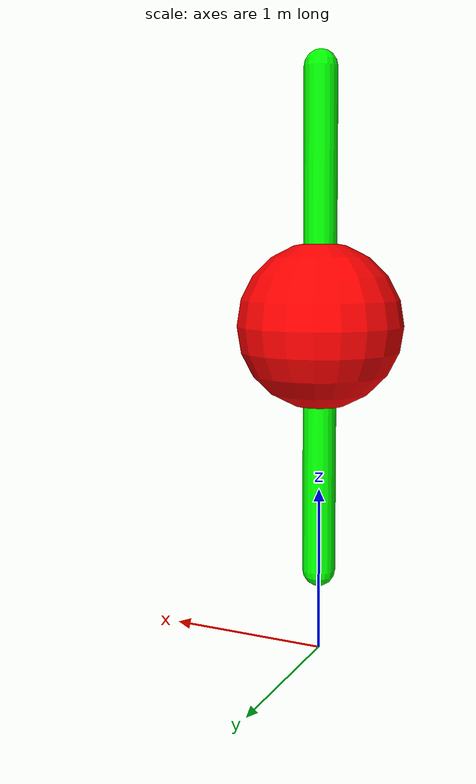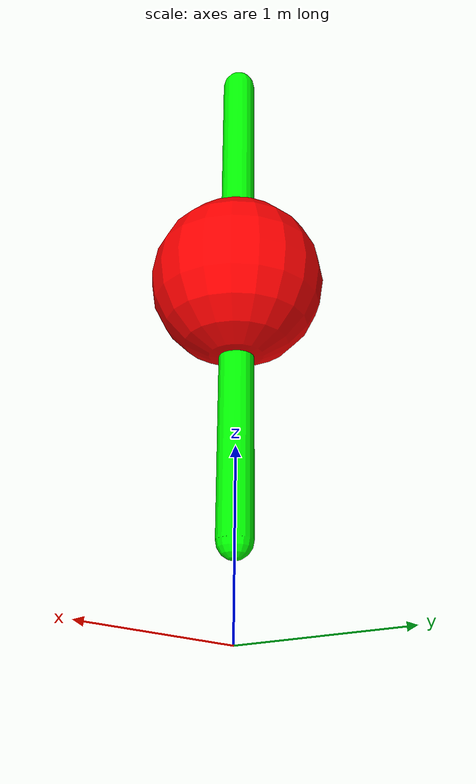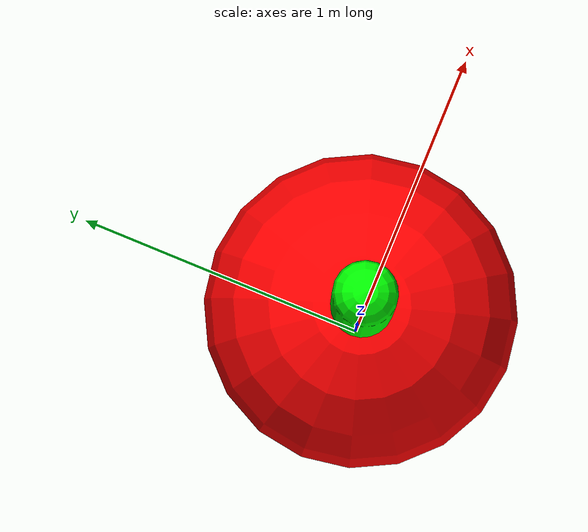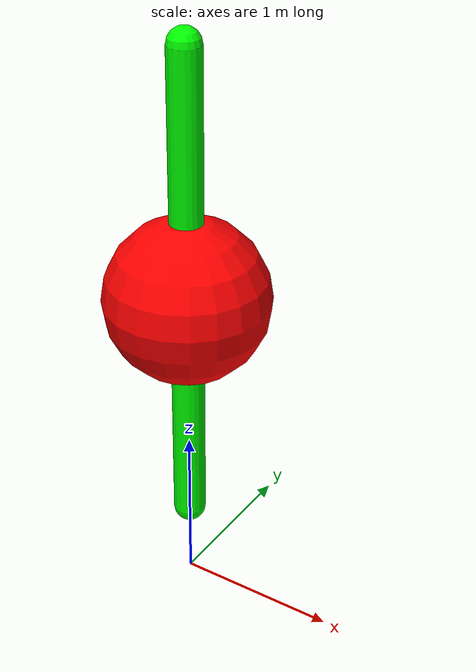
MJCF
<mujoco>
  <option gravity="0 0 -9.81"/>
  <worldbody>
    <light diffuse="0.5 0.5 0.5" pos="0 0 3" dir="0 0 -1"/>
    <!-- Mass (attached to spring) -->
    <body name="mass" pos="0 0 2">
      <geom type="sphere" size="0.5" density="5" rgba="1 0 0 1"/>
      <joint name="mass_joint" type="slide" axis="0 0 1"/>
    </body>
    <!-- Spring -->
    <body name="spring" pos="0 0 2">
      <joint name="spring_joint" type="hinge" axis="0 0 1" pos="0 0 0"/>
      <geom type="capsule" size="0.1 1.5" rgba="0 1 0 1"/>
    </body>
    <!-- Damping (simulated by friction or damping joint) -->
    <body name="damping" pos="0 0 2">
      <joint name="damping_joint" type="hinge" axis="0 0 1" damping="1.0"/>
    </body>
  </worldbody>
</mujoco>
